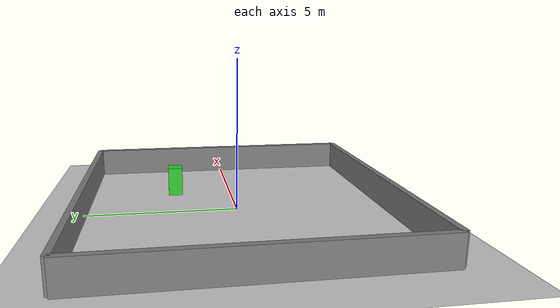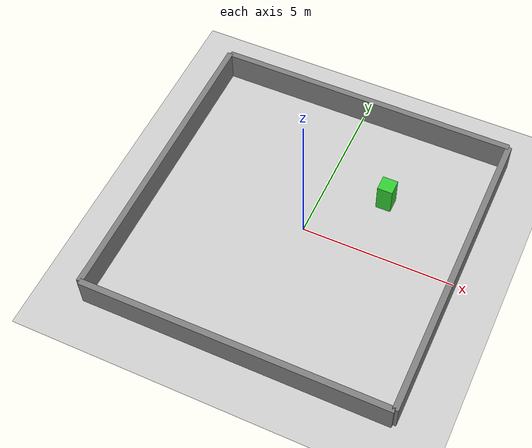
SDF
<?xml version="1.0" ?>
<sdf version="1.6">
  <world name="my_world">

    <!-- Physics -->
    <physics name="default_physics" default="0" type="ode">
      <max_step_size>0.001</max_step_size>
      <real_time_factor>1</real_time_factor>
      <real_time_update_rate>1000</real_time_update_rate>
    </physics>

    <!-- Plugins -->
    <plugin filename="gz-sim-physics-system"
            name="gz::sim::systems::Physics"/>
    <plugin filename="gz-sim-user-commands-system"
            name="gz::sim::systems::UserCommands"/>
    <plugin filename="gz-sim-scene-broadcaster-system"
            name="gz::sim::systems::SceneBroadcaster"/>
    <plugin filename="gz-sim-sensors-system"
            name="gz::sim::systems::Sensors">
      <render_engine>ogre2</render_engine>
    </plugin>
    <plugin filename="gz-sim-contact-system"
            name="gz::sim::systems::Contact"/>

    <!-- Lighting -->
    <light type="directional" name="sun">
      <cast_shadows>true</cast_shadows>
      <pose>0 0 10 0 0 0</pose>
      <diffuse>0.8 0.8 0.8 1</diffuse>
      <specular>0.2 0.2 0.2 1</specular>
      <attenuation>
        <range>1000</range>
        <constant>0.9</constant>
        <linear>0.01</linear>
        <quadratic>0.001</quadratic>
      </attenuation>
      <direction>-0.5 0.1 -0.9</direction>
    </light>

    <!-- Ground plane -->
    <model name="ground_plane">
      <static>true</static>
      <link name="link">
        <collision name="collision">
          <geometry>
            <plane>
              <normal>0 0 1</normal>
              <size>100 100</size>
            </plane>
          </geometry>
        </collision>
        <visual name="visual">
          <geometry>
            <plane>
              <normal>0 0 1</normal>
              <size>100 100</size>
            </plane>
          </geometry>
          <material>
            <ambient>0.8 0.8 0.8 1</ambient>
            <diffuse>0.8 0.8 0.8 1</diffuse>
            <specular>0.8 0.8 0.8 1</specular>
          </material>
        </visual>
      </link>
    </model>

    <!-- A few simple walls to make the environment mappable -->
    <model name="wall_north">
      <static>true</static>
      <pose>0 5 0.5 0 0 0</pose>
      <link name="link">
        <collision name="collision">
          <geometry><box><size>10 0.2 1</size></box></geometry>
        </collision>
        <visual name="visual">
          <geometry><box><size>10 0.2 1</size></box></geometry>
          <material><ambient>0.5 0.5 0.5 1</ambient></material>
        </visual>
      </link>
    </model>

    <model name="wall_south">
      <static>true</static>
      <pose>0 -5 0.5 0 0 0</pose>
      <link name="link">
        <collision name="collision">
          <geometry><box><size>10 0.2 1</size></box></geometry>
        </collision>
        <visual name="visual">
          <geometry><box><size>10 0.2 1</size></box></geometry>
          <material><ambient>0.5 0.5 0.5 1</ambient></material>
        </visual>
      </link>
    </model>

    <model name="wall_east">
      <static>true</static>
      <pose>5 0 0.5 0 0 1.5708</pose>
      <link name="link">
        <collision name="collision">
          <geometry><box><size>10 0.2 1</size></box></geometry>
        </collision>
        <visual name="visual">
          <geometry><box><size>10 0.2 1</size></box></geometry>
          <material><ambient>0.5 0.5 0.5 1</ambient></material>
        </visual>
      </link>
    </model>

    <model name="wall_west">
      <static>true</static>
      <pose>-5 0 0.5 0 0 1.5708</pose>
      <link name="link">
        <collision name="collision">
          <geometry><box><size>10 0.2 1</size></box></geometry>
        </collision>
        <visual name="visual">
          <geometry><box><size>10 0.2 1</size></box></geometry>
          <material><ambient>0.5 0.5 0.5 1</ambient></material>
        </visual>
      </link>
    </model>

    <!-- A box obstacle -->
    <model name="box_obstacle">
      <static>true</static>
      <pose>2 2 0.5 0 0 0</pose>
      <link name="link">
        <collision name="collision">
          <geometry><box><size>0.5 0.5 1</size></box></geometry>
        </collision>
        <visual name="visual">
          <geometry><box><size>0.5 0.5 1</size></box></geometry>
          <material><ambient>0.2 0.8 0.2 1</ambient></material>
        </visual>
      </link>
    </model>

  </world>
</sdf>
